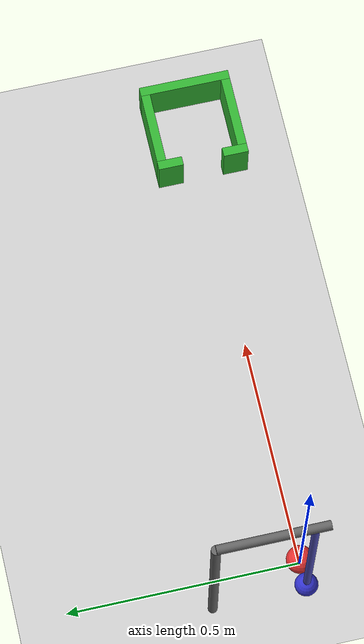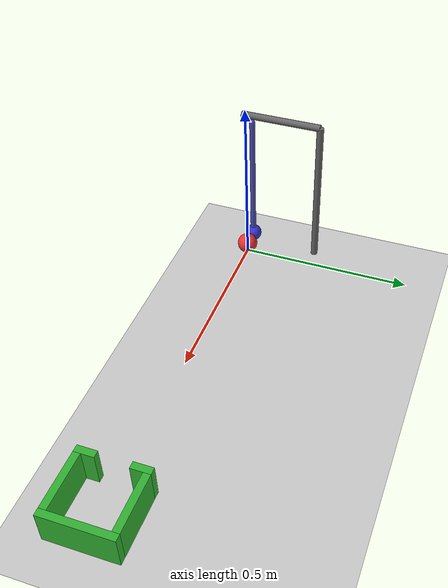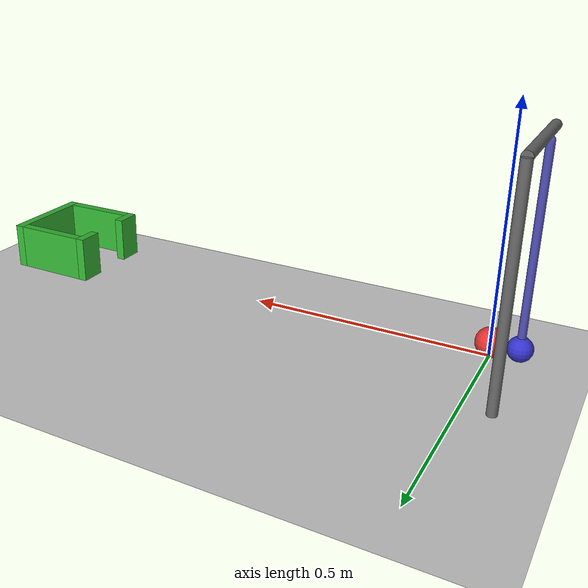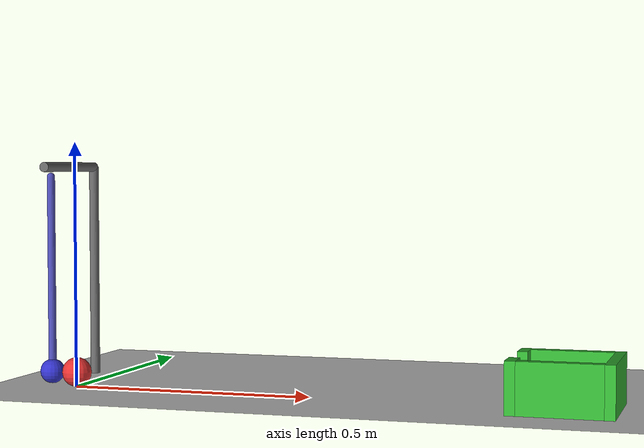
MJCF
<mujoco model="pendulum_ball_cup">
  <option timestep="0.002" gravity="0 0 -9.81"/>

  <worldbody>
    <light name="sun" pos="0.5 -1 2" dir="0 0.5 -1" directional="true"/>
    <geom name="floor" type="plane" size="3 3 0.1" rgba="0.8 0.8 0.8 1"/>

    <!-- cosmetic support frame for the pendulum (non-colliding) -->
    <geom name="support_post" type="cylinder" fromto="-0.055 0.2 0 -0.055 0.2 0.45" size="0.01" contype="0" conaffinity="0" rgba="0.4 0.4 0.4 1"/>
    <geom name="support_beam" type="cylinder" fromto="-0.055 0.2 0.45 -0.055 -0.03 0.45" size="0.01" contype="0" conaffinity="0" rgba="0.4 0.4 0.4 1"/>

    <!-- pendulum: pivot 0.4 m above the ball centre, bob just touching the ball when vertical -->
    <body name="pendulum" pos="-0.055 0 0.43">
      <joint name="pendulum_hinge" type="hinge" axis="0 1 0" damping="0.002"/>
      <geom name="pendulum_rod" type="capsule" fromto="0 0 0 0 0 -0.375" size="0.008" mass="0.02" rgba="0.3 0.3 0.7 1"/>
      <geom name="pendulum_bob" type="sphere" pos="0 0 -0.4" size="0.025" mass="0.2" rgba="0.2 0.2 0.8 1"/>
    </body>

    <!-- ball resting on the floor at the origin -->
    <body name="ball" pos="0 0 0.03">
      <freejoint/>
      <geom name="ball" type="sphere" size="0.03" mass="0.05" rgba="0.9 0.2 0.2 1"/>
    </body>

    <!-- cup centred 1 m from the ball start, mouth facing the ball (-x side) -->
    <body name="cup" pos="1 0 0">
      <geom name="cup_back" type="box" pos="0.09 0 0.05" size="0.01 0.1 0.05" rgba="0.2 0.7 0.2 1"/>
      <geom name="cup_side_left" type="box" pos="0 0.09 0.05" size="0.08 0.01 0.05" rgba="0.2 0.7 0.2 1"/>
      <geom name="cup_side_right" type="box" pos="0 -0.09 0.05" size="0.08 0.01 0.05" rgba="0.2 0.7 0.2 1"/>
      <geom name="cup_front_left" type="box" pos="-0.09 0.0725 0.05" size="0.01 0.0275 0.05" rgba="0.2 0.7 0.2 1"/>
      <geom name="cup_front_right" type="box" pos="-0.09 -0.0725 0.05" size="0.01 0.0275 0.05" rgba="0.2 0.7 0.2 1"/>
    </body>
  </worldbody>

  <keyframe>
    <!-- pendulum raised 0.6 rad back (bob toward -x); ball at rest -->
    <key name="start" qpos="0.6 0 0 0.03 1 0 0 0" qvel="0 0 0 0 0 0 0"/>
  </keyframe>
</mujoco>
